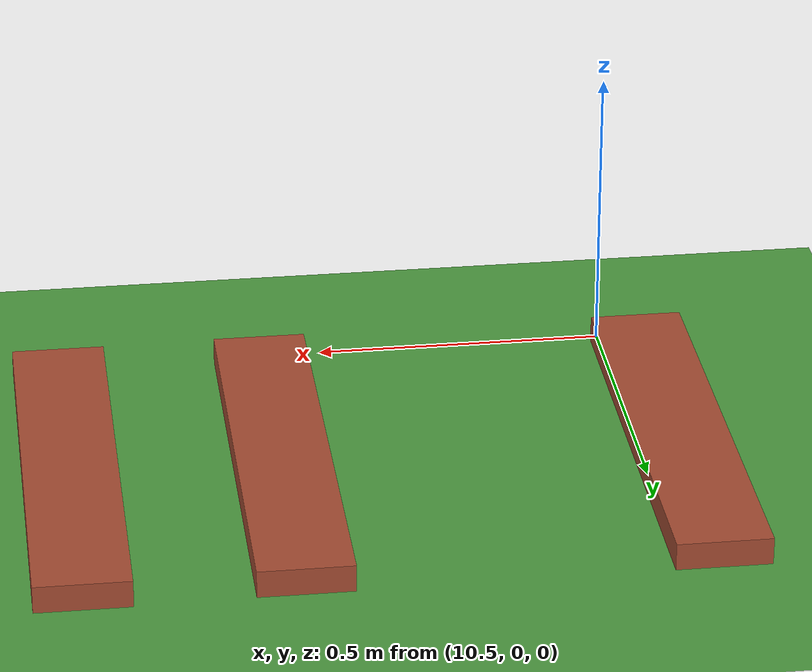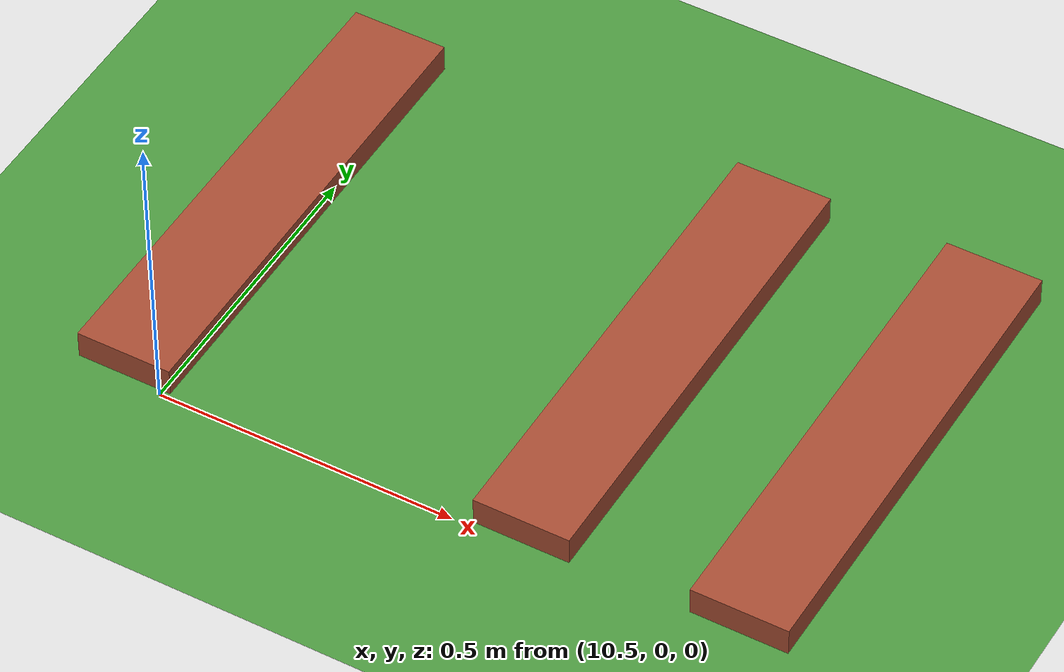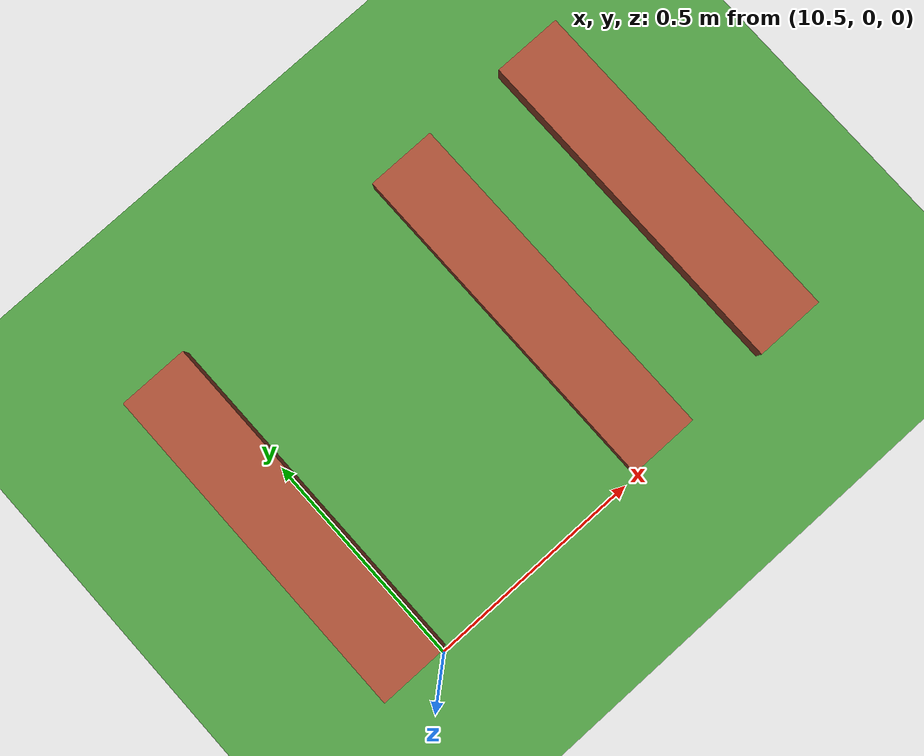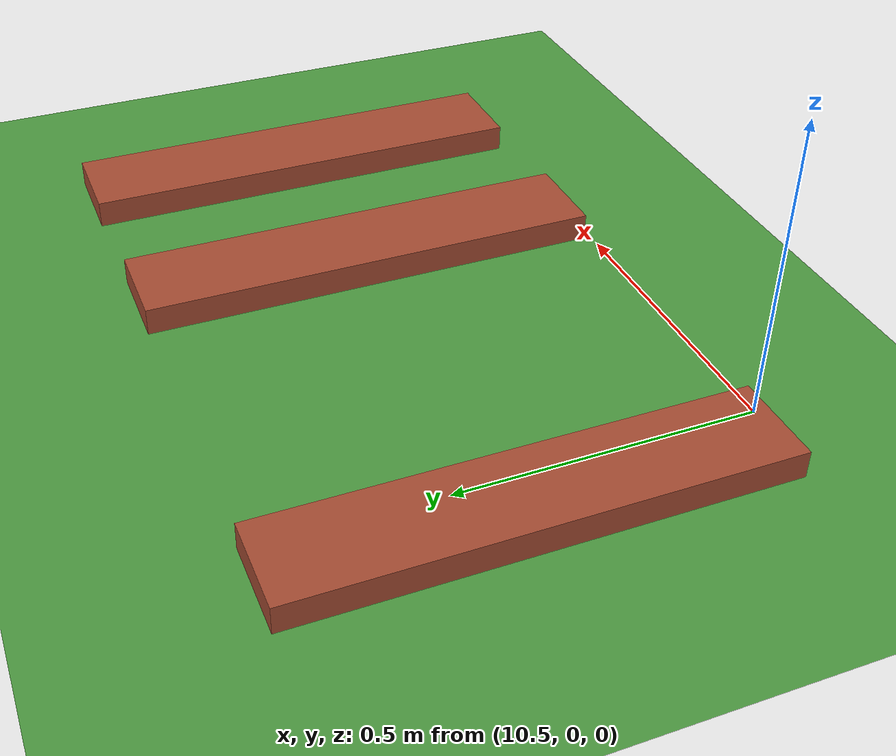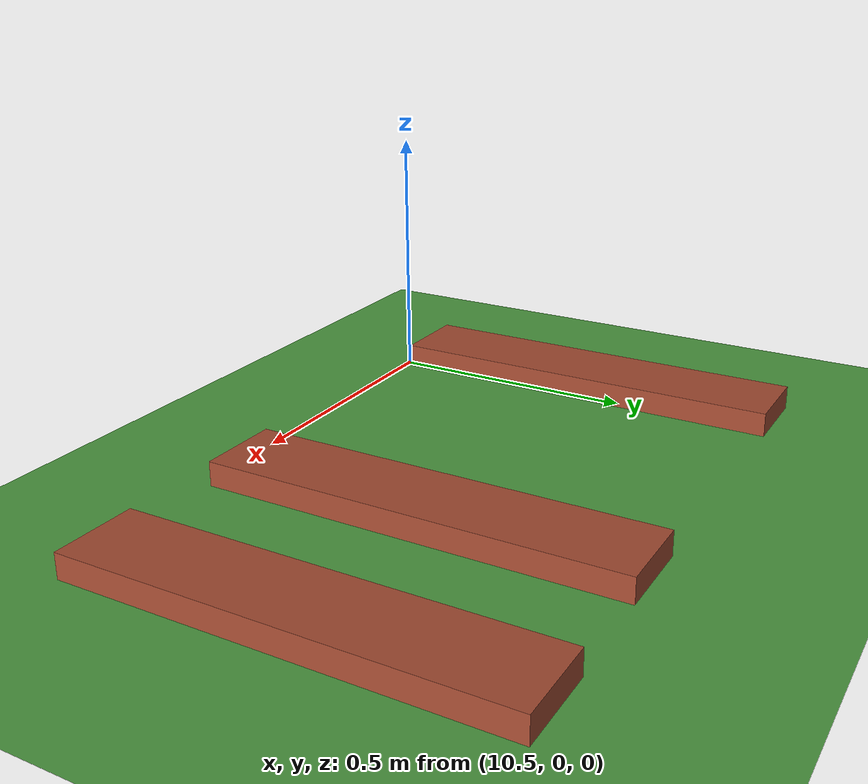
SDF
<sdf version="1.6">
 <world name="default">
  <model name="ground_plane">
   <static>1</static>
   <link name="link">
    <collision name="collision">
     <geometry><plane><normal>0 0 1</normal><size>100 100</size></plane></geometry>
     <surface>
      <contact><collide_bitmask>65535</collide_bitmask></contact>
      <friction><ode><mu>100</mu><mu2>50</mu2></ode></friction>
     </surface>
    </collision>
    <visual name="visual">
     <cast_shadows>0</cast_shadows>
     <geometry><plane><normal>0 0 1</normal><size>100 100</size></plane></geometry>
     <material>
      <script><uri>file://media/materials/scripts/gazebo.material</uri><name>Gazebo/Grass</name></script>
     </material>
    </visual>
   </link>
  </model>
  <model name="terrain_step_5cm_0_clone_6">
   <link name="link">
    <inertial>
     <mass>10</mass>
     <inertia><ixx>1.66667</ixx><ixy>0</ixy><ixz>0</ixz><iyy>1.66667</iyy><iyz>0</iyz><izz>1.66667</izz></inertia>
    </inertial>
    <sensor name="test" type="contact">
     <always_on>1</always_on>
     <update_rate>200</update_rate>
     <visualize>1</visualize>
     <contact><collision>collision</collision><topic>__default_topic__</topic></contact>
    </sensor>
    <visual name="visual">
     <geometry><box><size>0.16 0.8 0.05</size></box></geometry>
     <material>
      <script><name>Gazebo/Bricks</name><uri>file://media/materials/scripts/gazebo.material</uri></script>
      <shader type="vertex"><normal_map>__default__</normal_map></shader>
      <ambient>0.3 0.3 0.3 1</ambient>
      <diffuse>0.7 0.7 0.7 1</diffuse>
      <specular>0.01 0.01 0.01 1</specular>
      <emissive>0 0 0 1</emissive>
     </material>
    </visual>
    <collision name="collision">
     <geometry><box><size>0.16 0.8 0.05</size></box></geometry>
     <surface>
      <friction>
       <ode><mu>1</mu><mu2>1</mu2><fdir1>0 0 0</fdir1><slip1>0</slip1><slip2>0</slip2></ode>
       <torsional>
        <coefficient>1</coefficient>
        <patch_radius>0</patch_radius>
        <surface_radius>0</surface_radius>
        <use_patch_radius>1</use_patch_radius>
        <ode><slip>0</slip></ode>
       </torsional>
      </friction>
      <bounce><restitution_coefficient>0</restitution_coefficient><threshold>1e+06</threshold></bounce>
      <contact>
       <collide_without_contact>0</collide_without_contact>
       <collide_without_contact_bitmask>1</collide_without_contact_bitmask>
       <collide_bitmask>1</collide_bitmask>
       <ode>
        <soft_cfm>0</soft_cfm>
        <soft_erp>0.2</soft_erp>
        <kp>1e+13</kp>
        <kd>1</kd>
        <max_vel>0.01</max_vel>
        <min_depth>0.001</min_depth>
       </ode>
       <bullet>
        <split_impulse>1</split_impulse>
        <split_impulse_penetration_threshold>-0.01</split_impulse_penetration_threshold>
        <soft_cfm>0</soft_cfm>
        <soft_erp>0.2</soft_erp>
        <kp>1e+13</kp>
        <kd>1</kd>
       </bullet>
      </contact>
     </surface>
    </collision>
   </link>
   <static>1</static>
   <pose>10.4322 0.40956 0.020814 0 -0 0</pose>
  </model>
  <model name="terrain_step_5cm_0_clone_10">
   <link name="link">
    <inertial>
     <mass>10</mass>
     <inertia><ixx>1.66667</ixx><ixy>0</ixy><ixz>0</ixz><iyy>1.66667</iyy><iyz>0</iyz><izz>1.66667</izz></inertia>
    </inertial>
    <sensor name="test" type="contact">
     <always_on>1</always_on>
     <update_rate>200</update_rate>
     <visualize>1</visualize>
     <contact><collision>collision</collision><topic>__default_topic__</topic></contact>
    </sensor>
    <visual name="visual">
     <geometry><box><size>0.16 0.8 0.05</size></box></geometry>
     <material>
      <script><name>Gazebo/Bricks</name><uri>file://media/materials/scripts/gazebo.material</uri></script>
      <shader type="vertex"><normal_map>__default__</normal_map></shader>
      <ambient>0.3 0.3 0.3 1</ambient>
      <diffuse>0.7 0.7 0.7 1</diffuse>
      <specular>0.01 0.01 0.01 1</specular>
      <emissive>0 0 0 1</emissive>
     </material>
    </visual>
    <collision name="collision">
     <geometry><box><size>0.16 0.8 0.05</size></box></geometry>
     <surface>
      <friction>
       <ode><mu>1</mu><mu2>1</mu2><fdir1>0 0 0</fdir1><slip1>0</slip1><slip2>0</slip2></ode>
       <torsional>
        <coefficient>1</coefficient>
        <patch_radius>0</patch_radius>
        <surface_radius>0</surface_radius>
        <use_patch_radius>1</use_patch_radius>
        <ode><slip>0</slip></ode>
       </torsional>
      </friction>
      <bounce><restitution_coefficient>0</restitution_coefficient><threshold>1e+06</threshold></bounce>
      <contact>
       <collide_without_contact>0</collide_without_contact>
       <collide_without_contact_bitmask>1</collide_without_contact_bitmask>
       <collide_bitmask>1</collide_bitmask>
       <ode>
        <soft_cfm>0</soft_cfm>
        <soft_erp>0.2</soft_erp>
        <kp>1e+13</kp>
        <kd>1</kd>
        <max_vel>0.01</max_vel>
        <min_depth>0.001</min_depth>
       </ode>
       <bullet>
        <split_impulse>1</split_impulse>
        <split_impulse_penetration_threshold>-0.01</split_impulse_penetration_threshold>
        <soft_cfm>0</soft_cfm>
        <soft_erp>0.2</soft_erp>
        <kp>1e+13</kp>
        <kd>1</kd>
       </bullet>
      </contact>
     </surface>
    </collision>
   </link>
   <static>1</static>
   <pose>11.1094 0.411292 0.020814 0 -0 0</pose>
  </model>
  <model name="terrain_step_5cm_0_clone_12">
   <link name="link">
    <inertial>
     <mass>10</mass>
     <inertia><ixx>1.66667</ixx><ixy>0</ixy><ixz>0</ixz><iyy>1.66667</iyy><iyz>0</iyz><izz>1.66667</izz></inertia>
    </inertial>
    <sensor name="test" type="contact">
     <always_on>1</always_on>
     <update_rate>200</update_rate>
     <visualize>1</visualize>
     <contact><collision>collision</collision><topic>__default_topic__</topic></contact>
    </sensor>
    <visual name="visual">
     <geometry><box><size>0.16 0.8 0.05</size></box></geometry>
     <material>
      <script><name>Gazebo/Bricks</name><uri>file://media/materials/scripts/gazebo.material</uri></script>
      <shader type="vertex"><normal_map>__default__</normal_map></shader>
      <ambient>0.3 0.3 0.3 1</ambient>
      <diffuse>0.7 0.7 0.7 1</diffuse>
      <specular>0.01 0.01 0.01 1</specular>
      <emissive>0 0 0 1</emissive>
     </material>
    </visual>
    <collision name="collision">
     <geometry><box><size>0.16 0.8 0.05</size></box></geometry>
     <surface>
      <friction>
       <ode><mu>1</mu><mu2>1</mu2><fdir1>0 0 0</fdir1><slip1>0</slip1><slip2>0</slip2></ode>
       <torsional>
        <coefficient>1</coefficient>
        <patch_radius>0</patch_radius>
        <surface_radius>0</surface_radius>
        <use_patch_radius>1</use_patch_radius>
        <ode><slip>0</slip></ode>
       </torsional>
      </friction>
      <bounce><restitution_coefficient>0</restitution_coefficient><threshold>1e+06</threshold></bounce>
      <contact>
       <collide_without_contact>0</collide_without_contact>
       <collide_without_contact_bitmask>1</collide_without_contact_bitmask>
       <collide_bitmask>1</collide_bitmask>
       <ode>
        <soft_cfm>0</soft_cfm>
        <soft_erp>0.2</soft_erp>
        <kp>1e+13</kp>
        <kd>1</kd>
        <max_vel>0.01</max_vel>
        <min_depth>0.001</min_depth>
       </ode>
       <bullet>
        <split_impulse>1</split_impulse>
        <split_impulse_penetration_threshold>-0.01</split_impulse_penetration_threshold>
        <soft_cfm>0</soft_cfm>
        <soft_erp>0.2</soft_erp>
        <kp>1e+13</kp>
        <kd>1</kd>
       </bullet>
      </contact>
     </surface>
    </collision>
   </link>
   <static>1</static>
   <pose>11.465 0.41529 0.020814 0 -0 0</pose>
  </model>
 </world>
</sdf>
